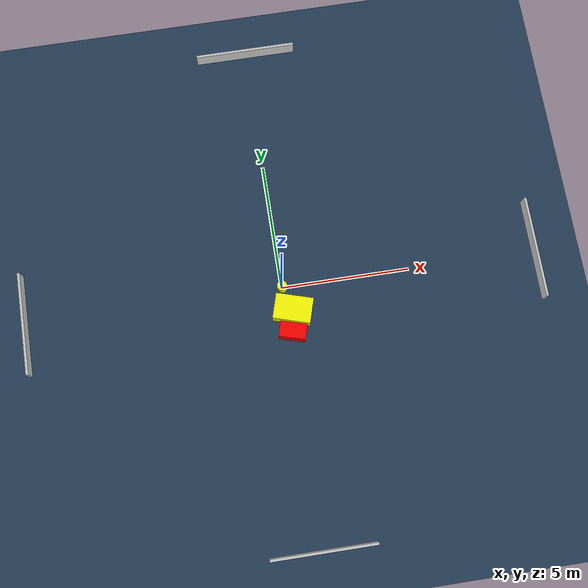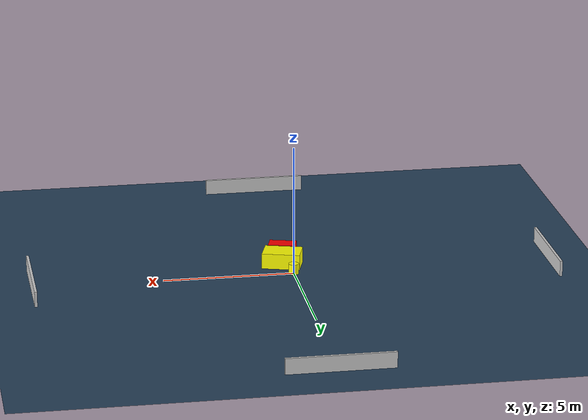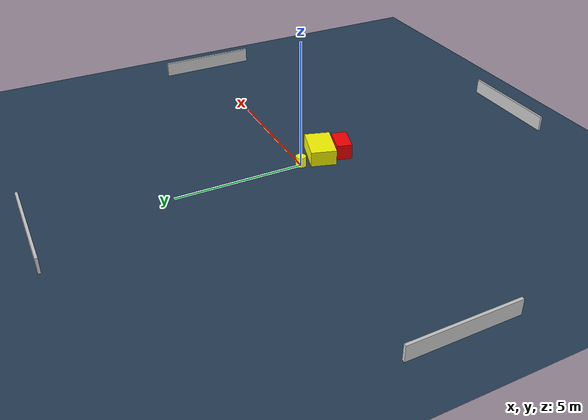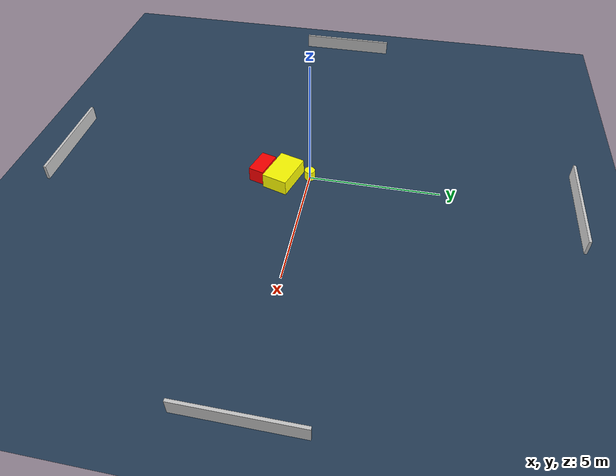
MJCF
<?xml version="1.0" ?>
<mujoco model="generated_environment">
  <option timestep="0.01" integrator="RK4" cone="elliptic"/>
  <default>
    <geom density="1"/>
  </default>
  <asset>
    <texture builtin="gradient" height="3072" name="skybox" rgb1="0.3 0.5 0.7" rgb2="0 0 0" type="skybox" width="512"/>
    <texture builtin="checker" height="300" name="groundplane" rgb1="0.2 0.3 0.4" rgb2="0.1 0.2 0.3" type="2d" width="300"/>
    <material name="groundplane" reflectance="0.2" texrepeat="5 5" texture="groundplane"/>
  </asset>
  <worldbody>
    <light dir="0 0 -1" directional="true" pos="0 0 1.5"/>
    <geom condim="3" friction="0.5 0.005 0.001" material="groundplane" name="floor" pos="0 0 0" size="0 0 0.05" type="plane"/>
    <body name="walls">
      <geom name="wall_1" condim="4" pos="-10.0 0.0 0.3" rgba="0.800000011920929 0.800000011920929 0.800000011920929 1.0" size="0.05 2.0 0.3" type="box"/>
      <geom name="wall_2" condim="4" pos="10.0 0.0 0.3" rgba="0.800000011920929 0.800000011920929 0.800000011920929 1.0" size="0.05 2.0 0.3" type="box"/>
      <geom name="wall_3" condim="4" pos="0.0 -10.0 0.3" rgba="0.800000011920929 0.800000011920929 0.800000011920929 1.0" size="2.0 0.05 0.3" type="box"/>
      <geom name="wall_4" condim="4" pos="0.0 10.0 0.3" rgba="0.800000011920929 0.800000011920929 0.800000011920929 1.0" size="2.0 0.05 0.3" type="box"/>
    </body>
    <body name="robot">
      <joint name="joint_x" type="slide" pos="0 0 0" axis="1 0 0"/>
      <joint name="joint_y" type="slide" pos="0 0 0" axis="0 1 0"/>
      <geom name="robot" type="cylinder" pos="0.0 0.0 0.2" size="0.2 0.2 0.0" mass="5.0" friction="1.0 0.005 0.0001" condim="4" rgba="1.0 1.0 0.0 1.0"/>
    </body>
    <body name="obstacle_1_movable">
      <geom name="obstacle_1_movable" condim="4" pos="0.27641247908571637 -0.9801005441955719 0.3" euler="0 0 73.09897471813227" friction="0.0 0.005 0.001" rgba="1.0 1.0 0.0 1.0" size="0.49635203785357956 0.7296852255008293 0.3" type="box" mass="0.1"/>
      <joint type="free"/>
    </body>
    <body name="obstacle_2_static">
      <geom name="obstacle_2_static" condim="4" pos="0.14002248997087058 -1.8349526265842901 0.3" euler="0 0 163.87862906686155" friction="0.0 0.005 0.001" rgba="1.0 0.0 0.0 1.0" size="0.5205260947464969 0.3032722279578319 0.3" type="box"/>
    </body>
  </worldbody>
  <actuator>
    <motor name="actuator_x" joint="joint_x" gear="1" ctrlrange="-1 1"/>
    <motor name="actuator_y" joint="joint_y" gear="1" ctrlrange="-1 1"/>
  </actuator>
</mujoco>
